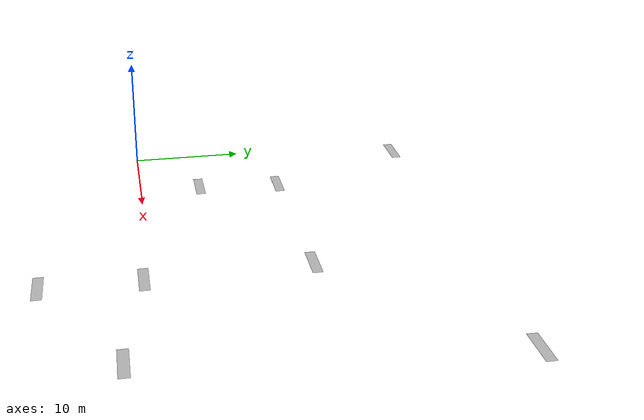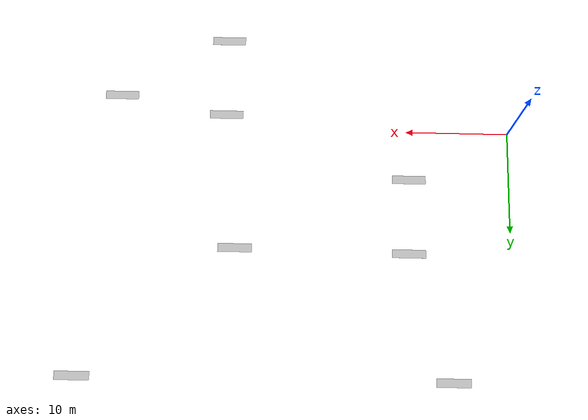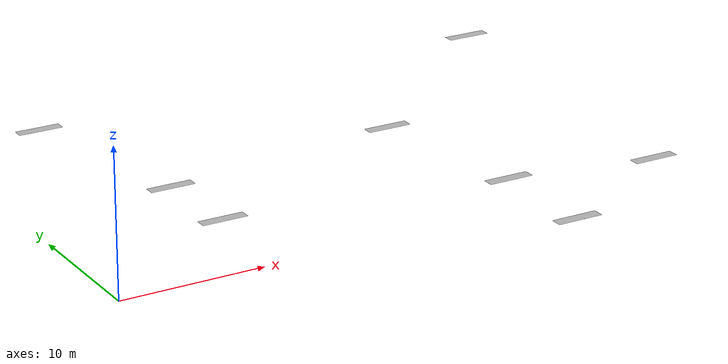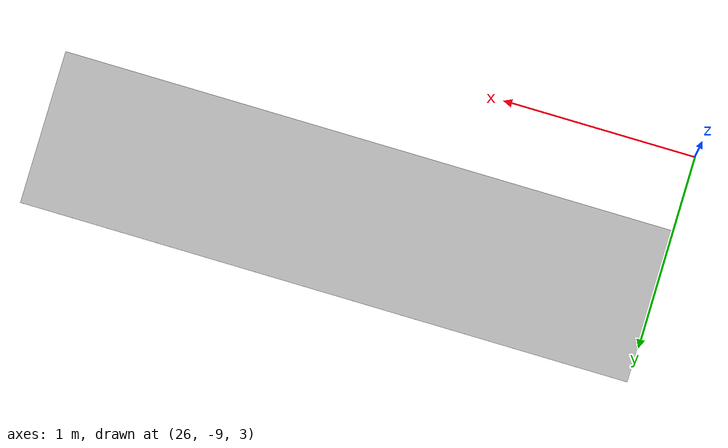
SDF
<?xml version="1.0" ?>
<sdf version="1.6">
  <model name="warehouse_labels">
    <static>true</static>

    <!-- Machine 1 -->
    <link name="label_machine1">
      <pose>9.9 12.45 1.05 0 0 0</pose>
      <visual name="visual">
        <cast_shadows>false</cast_shadows>
        <geometry>
          <plane>
            <normal>0 0 1</normal>
            <size>3.2 0.8</size>
          </plane>
        </geometry>
        <material>
          <script>
            <uri>model://warehouse_labels/materials/scripts</uri>
            <uri>model://warehouse_labels/materials/textures</uri>
            <name>Labels/Machine1</name>
          </script>
        </material>
      </visual>
    </link>

    <!-- Machine 2 -->
    <link name="label_machine2">
      <pose>9.9 5.25 1.35 0 0 0</pose>
      <visual name="visual">
        <cast_shadows>false</cast_shadows>
        <geometry>
          <plane>
            <normal>0 0 1</normal>
            <size>3.2 0.8</size>
          </plane>
        </geometry>
        <material>
          <script>
            <uri>model://warehouse_labels/materials/scripts</uri>
            <uri>model://warehouse_labels/materials/textures</uri>
            <name>Labels/Machine2</name>
          </script>
        </material>
      </visual>
    </link>

    <!-- Rack (rack_storage_1) -->
    <link name="label_rack_storage_1">
      <pose>27.6 -0.6 2.55 0 0 0</pose>
      <visual name="visual">
        <cast_shadows>false</cast_shadows>
        <geometry>
          <plane>
            <normal>0 0 1</normal>
            <size>3.2 0.8</size>
          </plane>
        </geometry>
        <material>
          <script>
            <uri>model://warehouse_labels/materials/scripts</uri>
            <uri>model://warehouse_labels/materials/textures</uri>
            <name>Labels/Rack</name>
          </script>
        </material>
      </visual>
    </link>

    <!-- Rack (rack_storage_2) -->
    <link name="label_rack_storage_2">
      <pose>27.6 -8.25 2.55 0 0 0</pose>
      <visual name="visual">
        <cast_shadows>false</cast_shadows>
        <geometry>
          <plane>
            <normal>0 0 1</normal>
            <size>3.2 0.8</size>
          </plane>
        </geometry>
        <material>
          <script>
            <uri>model://warehouse_labels/materials/scripts</uri>
            <uri>model://warehouse_labels/materials/textures</uri>
            <name>Labels/Rack</name>
          </script>
        </material>
      </visual>
    </link>

    <!-- Rack (rack_storage_vertical) -->
    <link name="label_rack_storage_vertical">
      <pose>37.8 -2.4 2.55 0 0 0</pose>
      <visual name="visual">
        <cast_shadows>false</cast_shadows>
        <geometry>
          <plane>
            <normal>0 0 1</normal>
            <size>3.2 0.8</size>
          </plane>
        </geometry>
        <material>
          <script>
            <uri>model://warehouse_labels/materials/scripts</uri>
            <uri>model://warehouse_labels/materials/textures</uri>
            <name>Labels/Rack</name>
          </script>
        </material>
      </visual>
    </link>

    <!-- Rack (rack_office) -->
    <link name="label_rack_office">
      <pose>40.7 24.6 2.55 0 0 0</pose>
      <visual name="visual">
        <cast_shadows>false</cast_shadows>
        <geometry>
          <plane>
            <normal>0 0 1</normal>
            <size>3.2 0.8</size>
          </plane>
        </geometry>
        <material>
          <script>
            <uri>model://warehouse_labels/materials/scripts</uri>
            <uri>model://warehouse_labels/materials/textures</uri>
            <name>Labels/Rack</name>
          </script>
        </material>
      </visual>
    </link>

    <!-- Loading Area -->
    <link name="label_loading_area">
      <pose>6.0 24.5 1.80 0 0 0</pose>
      <visual name="visual">
        <cast_shadows>false</cast_shadows>
        <geometry>
          <plane>
            <normal>0 0 1</normal>
            <size>3.2 0.8</size>
          </plane>
        </geometry>
        <material>
          <script>
            <uri>model://warehouse_labels/materials/scripts</uri>
            <uri>model://warehouse_labels/materials/textures</uri>
            <name>Labels/LoadingArea</name>
          </script>
        </material>
      </visual>
    </link>

    <!-- Cupboard -->
    <link name="label_cupboard">
      <pose>26.4 12.4 2.05 0 0 0</pose>
      <visual name="visual">
        <cast_shadows>false</cast_shadows>
        <geometry>
          <plane>
            <normal>0 0 1</normal>
            <size>3.2 0.8</size>
          </plane>
        </geometry>
        <material>
          <script>
            <uri>model://warehouse_labels/materials/scripts</uri>
            <uri>model://warehouse_labels/materials/textures</uri>
            <name>Labels/Cupboard</name>
          </script>
        </material>
      </visual>
    </link>

  </model>
</sdf>
